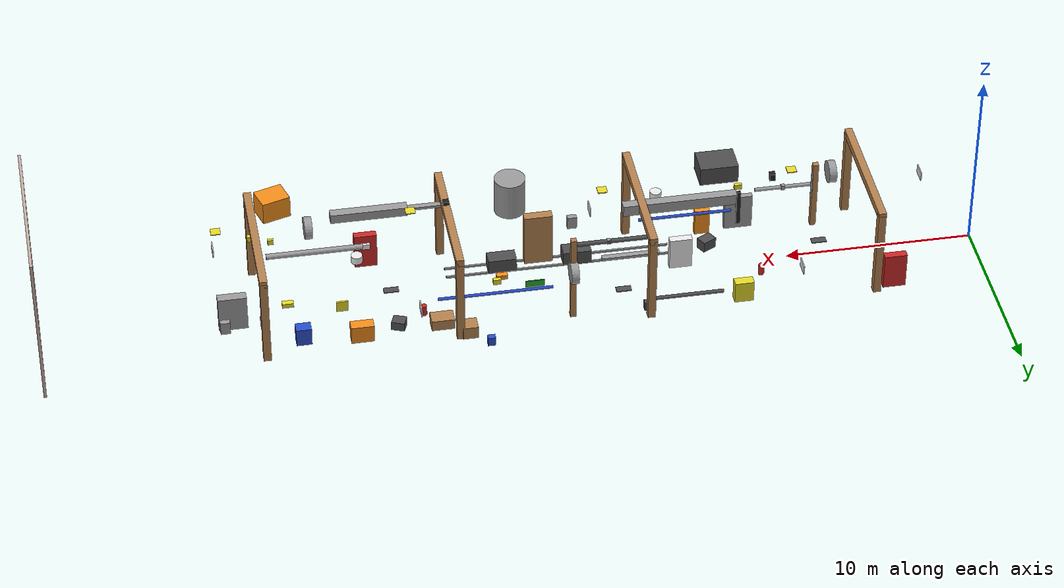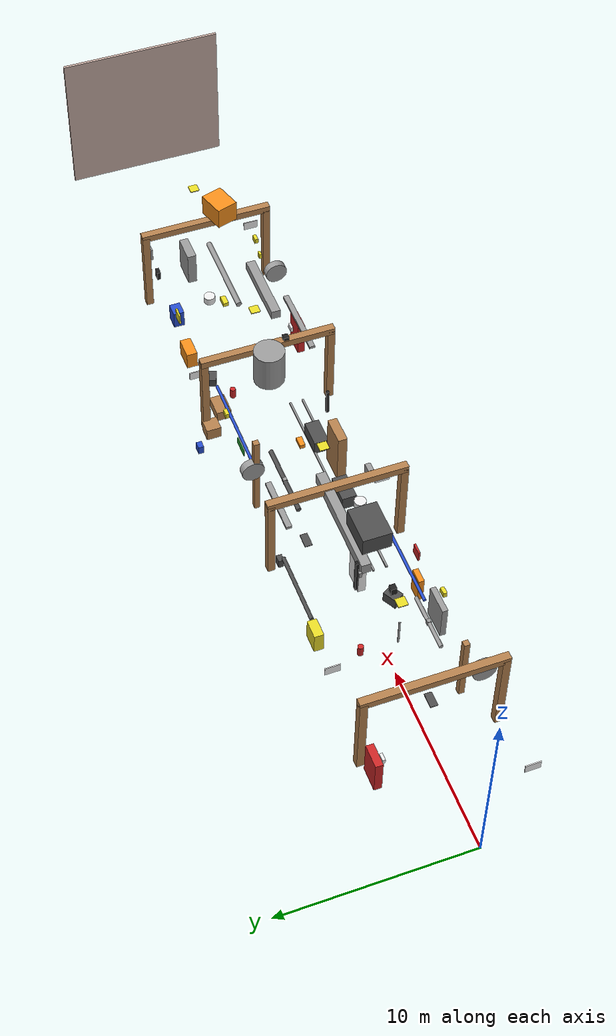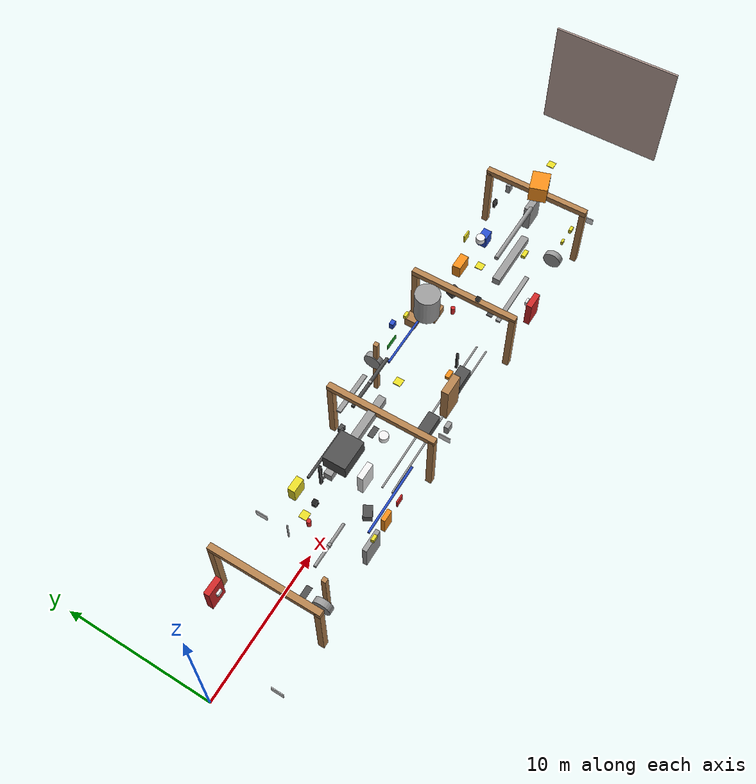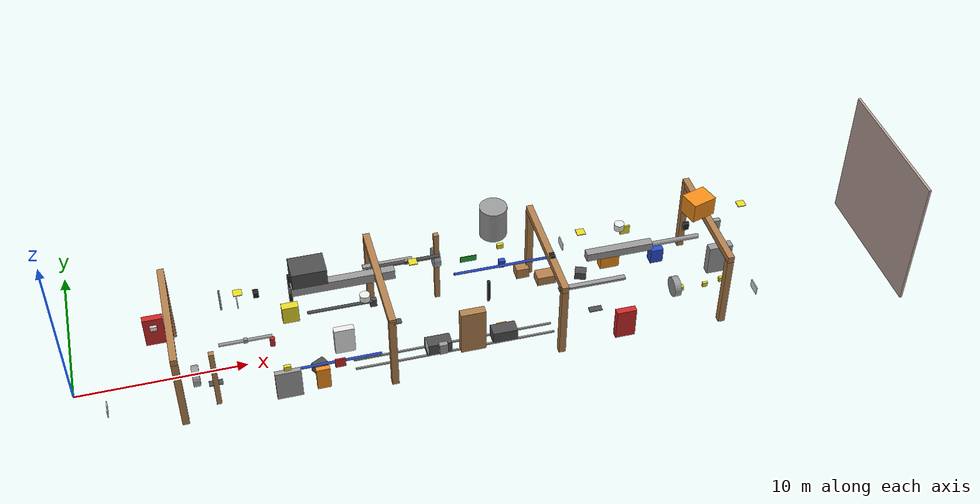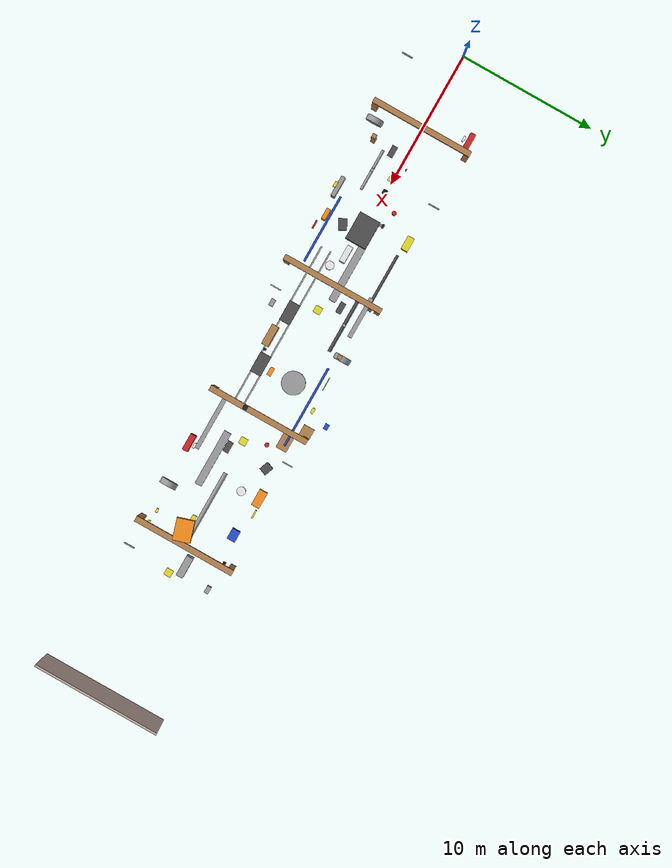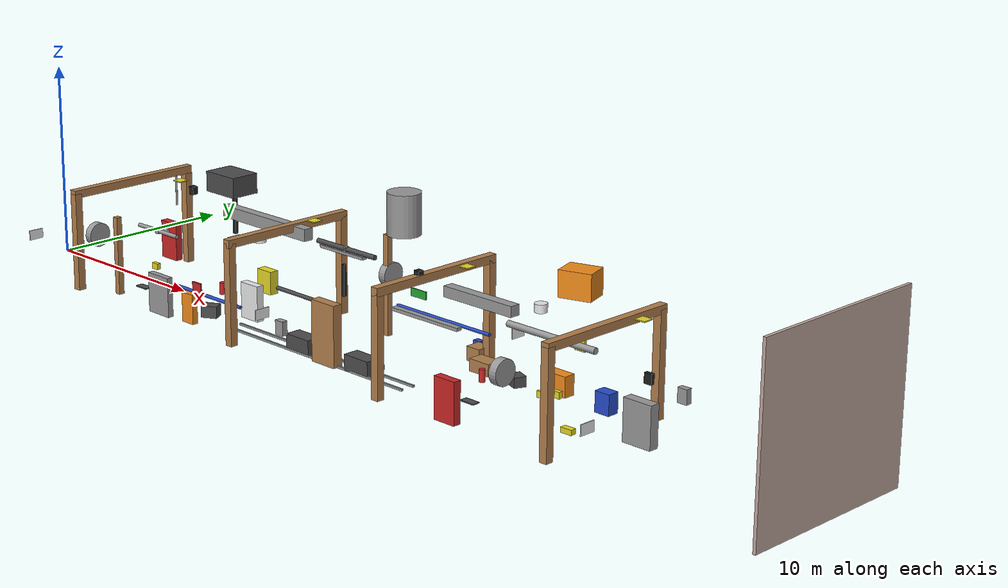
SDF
<sdf version="1.6">
 <world name="default">
  <light name="sun" type="directional">
   <pose>0 0 10 0 -0 0</pose>
   <diffuse>0.3 0.3 0.35 1</diffuse>
   <specular>0.1 0.1 0.1 1</specular>
   <attenuation>
    <range>1000</range>
    <constant>0.9</constant>
    <linear>0.01</linear>
    <quadratic>0.001</quadratic>
   </attenuation>
   <direction>-0.5 0.1 -0.9</direction>
   <spot><inner_angle>0</inner_angle><outer_angle>0</outer_angle><falloff>0</falloff></spot>
  </light>
  <gravity>0 0 -9.8</gravity>
  <magnetic_field>6e-06 2.3e-05 -4.2e-05</magnetic_field>
  <atmosphere type="adiabatic"/>
  <physics type="ode">
   <max_step_size>0.001</max_step_size>
   <real_time_factor>1</real_time_factor>
   <real_time_update_rate>1000</real_time_update_rate>
  </physics>
  <scene><ambient>0.15 0.15 0.18 1</ambient><background>0.1 0.1 0.12 1</background><shadows>1</shadows></scene>
  <spherical_coordinates>
   <surface_model>EARTH_WGS84</surface_model>
   <latitude_deg>0</latitude_deg>
   <longitude_deg>0</longitude_deg>
   <elevation>0</elevation>
   <heading_deg>0</heading_deg>
  </spherical_coordinates>
  <model name="tunnel_wall">
   <pose>41.9281 0 0 0 -0 0</pose>
   <link name="Wall_0">
    <collision name="Wall_0_Collision">
     <geometry><box><size>9.15 0.15 8.5</size></box></geometry>
     <pose>0 0 4.25 0 -0 0</pose>
    </collision>
    <visual name="Wall_0_Visual">
     <pose>0 0 4.25 0 -0 0</pose>
     <geometry><box><size>9.15 0.15 8.5</size></box></geometry>
     <material>
      <script><uri>file://media/materials/scripts/gazebo.material</uri><name>Gazebo/Grey</name></script>
      <ambient>0.760784 0.662745 0.627451 1</ambient>
     </material>
     <meta><layer>0</layer></meta>
    </visual>
    <pose>7.4625 0 0 0 -0 1.5708</pose>
   </link>
   <static>1</static>
  </model>
  <model name="fire_extinguisher_1">
   <pose>11.6268 1.17689 0 0 -0 0</pose>
   <link name="link">
    <collision name="collision">
     <geometry><cylinder><radius>0.15</radius><length>0.6</length></cylinder></geometry>
     <pose>0 0 0.3 0 0 0</pose>
    </collision>
    <visual name="visual">
     <pose>0 0 0.3 0 0 0</pose>
     <geometry><cylinder><radius>0.15</radius><length>0.6</length></cylinder></geometry>
     <material>
      <script><uri>file://media/materials/scripts/gazebo.material</uri><name>Gazebo/Red</name></script>
     </material>
    </visual>
   </link>
   <static>1</static>
  </model>
  <model name="backpack_1">
   <pose>18.0507 2.96156 0 0 -0 0</pose>
   <link name="link">
    <collision name="collision">
     <geometry><box><size>0.4 0.3 0.5</size></box></geometry>
     <pose>0 0 0.25 0 0 0</pose>
    </collision>
    <visual name="visual">
     <pose>0 0 0.25 0 0 0</pose>
     <geometry><box><size>0.4 0.3 0.5</size></box></geometry>
     <material>
      <script><uri>file://media/materials/scripts/gazebo.material</uri><name>Gazebo/DarkGrey</name></script>
     </material>
    </visual>
   </link>
   <static>1</static>
  </model>
  <model name="toolbox_1">
   <pose>25.1167 -0.811395 0 0 -0 0</pose>
   <link name="link">
    <collision name="collision">
     <geometry><box><size>0.6 0.3 0.25</size></box></geometry>
     <pose>0 0 0.125 0 0 0</pose>
    </collision>
    <visual name="visual">
     <pose>0 0 0.125 0 0 0</pose>
     <geometry><box><size>0.6 0.3 0.25</size></box></geometry>
     <material>
      <script><uri>file://media/materials/scripts/gazebo.material</uri><name>Gazebo/Orange</name></script>
     </material>
    </visual>
   </link>
   <static>1</static>
  </model>
  <model name="fire_extinguisher_2">
   <pose>29.5831 1.4324 0 0 -0 0</pose>
   <link name="link">
    <collision name="collision">
     <geometry><cylinder><radius>0.15</radius><length>0.6</length></cylinder></geometry>
     <pose>0 0 0.3 0 0 0</pose>
    </collision>
    <visual name="visual">
     <pose>0 0 0.3 0 0 0</pose>
     <geometry><cylinder><radius>0.15</radius><length>0.6</length></cylinder></geometry>
     <material>
      <script><uri>file://media/materials/scripts/gazebo.material</uri><name>Gazebo/Red</name></script>
     </material>
    </visual>
   </link>
   <static>1</static>
  </model>
  <model name="mining_cart_1">
   <pose>28.7837 2.42278 0 0 -0 0</pose>
   <link name="link">
    <collision name="collision">
     <geometry><box><size>1.2 0.8 0.6</size></box></geometry>
     <pose>0 0 0.3 0 0 0</pose>
    </collision>
    <visual name="visual">
     <pose>0 0 0.3 0 0 0</pose>
     <geometry><box><size>1.2 0.8 0.6</size></box></geometry>
     <material>
      <script><uri>file://media/materials/scripts/gazebo.material</uri><name>Gazebo/Wood</name></script>
     </material>
    </visual>
   </link>
   <static>1</static>
  </model>
  <model name="supply_crate_1">
   <pose>27.4993 3.35385 0 0 -0 0</pose>
   <link name="link">
    <collision name="collision">
     <geometry><box><size>0.8 0.8 0.7</size></box></geometry>
     <pose>0 0 0.35 0 0 0</pose>
    </collision>
    <visual name="visual">
     <pose>0 0 0.35 0 0 0</pose>
     <geometry><box><size>0.8 0.8 0.7</size></box></geometry>
     <material>
      <script><uri>file://media/materials/scripts/gazebo.material</uri><name>Gazebo/Wood</name></script>
     </material>
    </visual>
   </link>
   <static>1</static>
  </model>
  <model name="backpack_2">
   <pose>26.5208 4.34318 0 0 -0 0</pose>
   <link name="link">
    <collision name="collision">
     <geometry><box><size>0.4 0.3 0.5</size></box></geometry>
     <pose>0 0 0.25 0 0 0</pose>
    </collision>
    <visual name="visual">
     <pose>0 0 0.25 0 0 0</pose>
     <geometry><box><size>0.4 0.3 0.5</size></box></geometry>
     <material>
      <script><uri>file://media/materials/scripts/gazebo.material</uri><name>Gazebo/Blue</name></script>
     </material>
    </visual>
   </link>
   <static>1</static>
  </model>
  <model name="toolbox_2">
   <pose>36.4694 -0.458762 0 0 -0 0</pose>
   <link name="link">
    <collision name="collision">
     <geometry><box><size>0.6 0.3 0.25</size></box></geometry>
     <pose>0 0 0.125 0 0 0</pose>
    </collision>
    <visual name="visual">
     <pose>0 0 0.125 0 0 0</pose>
     <geometry><box><size>0.6 0.3 0.25</size></box></geometry>
     <material>
      <script><uri>file://media/materials/scripts/gazebo.material</uri><name>Gazebo/Yellow</name></script>
     </material>
    </visual>
   </link>
   <static>1</static>
  </model>
  <model name="equipment_rack_1">
   <pose>39.4364 0.680421 0 0 -0 0</pose>
   <link name="link">
    <collision name="collision">
     <geometry><box><size>1.5 0.5 2.0</size></box></geometry>
     <pose>0 0 1.0 0 0 0</pose>
    </collision>
    <visual name="visual">
     <pose>0 0 1.0 0 0 0</pose>
     <geometry><box><size>1.5 0.5 2.0</size></box></geometry>
     <material>
      <script><uri>file://media/materials/scripts/gazebo.material</uri><name>Gazebo/Grey</name></script>
     </material>
    </visual>
   </link>
   <static>1</static>
  </model>
  <model name="safety_station_1">
   <pose>15.6899 -0.274963 0 0 -0 0</pose>
   <link name="link">
    <collision name="collision">
     <geometry><box><size>1.2 0.4 1.8</size></box></geometry>
     <pose>0 0 0.9 0 0 0</pose>
    </collision>
    <visual name="visual">
     <pose>0 0 0.9 0 0 0</pose>
     <geometry><box><size>1.2 0.4 1.8</size></box></geometry>
     <material>
      <script><uri>file://media/materials/scripts/gazebo.material</uri><name>Gazebo/White</name></script>
     </material>
    </visual>
   </link>
   <static>1</static>
  </model>
  <model name="hanging_pipe_1">
   <pose>10 -1.5 3.5 0 1.57 0</pose>
   <link name="link">
    <collision name="collision">
     <geometry><cylinder><radius>0.1</radius><length>3.0</length></cylinder></geometry>
    </collision>
    <visual name="visual">
     <geometry><cylinder><radius>0.1</radius><length>3.0</length></cylinder></geometry>
     <material>
      <script><uri>file://media/materials/scripts/gazebo.material</uri><name>Gazebo/Grey</name></script>
     </material>
    </visual>
   </link>
   <static>1</static>
  </model>
  <model name="hanging_pipe_2">
   <pose>20 2.0 4.0 0 1.57 0</pose>
   <link name="link">
    <collision name="collision">
     <geometry><cylinder><radius>0.12</radius><length>4.0</length></cylinder></geometry>
    </collision>
    <visual name="visual">
     <geometry><cylinder><radius>0.12</radius><length>4.0</length></cylinder></geometry>
     <material>
      <script><uri>file://media/materials/scripts/gazebo.material</uri><name>Gazebo/DarkGrey</name></script>
     </material>
    </visual>
   </link>
   <static>1</static>
  </model>
  <model name="hanging_pipe_3">
   <pose>35 0 3.8 0 1.57 0</pose>
   <link name="link">
    <collision name="collision">
     <geometry><cylinder><radius>0.15</radius><length>5.0</length></cylinder></geometry>
    </collision>
    <visual name="visual">
     <geometry><cylinder><radius>0.15</radius><length>5.0</length></cylinder></geometry>
     <material>
      <script><uri>file://media/materials/scripts/gazebo.material</uri><name>Gazebo/Grey</name></script>
     </material>
    </visual>
   </link>
   <static>1</static>
  </model>
  <model name="cable_bundle_1">
   <pose>13 1.0 4.5 0 0 0</pose>
   <link name="link">
    <collision name="collision"><geometry><box><size>0.2 0.15 2.0</size></box></geometry></collision>
    <visual name="visual">
     <geometry><box><size>0.2 0.15 2.0</size></box></geometry>
     <material>
      <script><uri>file://media/materials/scripts/gazebo.material</uri><name>Gazebo/Black</name></script>
     </material>
    </visual>
   </link>
   <static>1</static>
  </model>
  <model name="cable_bundle_2">
   <pose>24 -1.8 4.2 0 0 0</pose>
   <link name="link">
    <collision name="collision"><geometry><box><size>0.15 0.15 1.5</size></box></geometry></collision>
    <visual name="visual">
     <geometry><box><size>0.15 0.15 1.5</size></box></geometry>
     <material>
      <script><uri>file://media/materials/scripts/gazebo.material</uri><name>Gazebo/Black</name></script>
     </material>
    </visual>
   </link>
   <static>1</static>
  </model>
  <model name="support_beam_1">
   <pose>8 -2.5 2.0 0 0 0</pose>
   <link name="link">
    <collision name="collision"><geometry><box><size>0.3 0.3 4.0</size></box></geometry></collision>
    <visual name="visual">
     <geometry><box><size>0.3 0.3 4.0</size></box></geometry>
     <material>
      <script><uri>file://media/materials/scripts/gazebo.material</uri><name>Gazebo/Wood</name></script>
     </material>
    </visual>
   </link>
   <static>1</static>
  </model>
  <model name="support_beam_2">
   <pose>22 2.8 2.5 0 0 0</pose>
   <link name="link">
    <collision name="collision"><geometry><box><size>0.3 0.3 5.0</size></box></geometry></collision>
    <visual name="visual">
     <geometry><box><size>0.3 0.3 5.0</size></box></geometry>
     <material>
      <script><uri>file://media/materials/scripts/gazebo.material</uri><name>Gazebo/Wood</name></script>
     </material>
    </visual>
   </link>
   <static>1</static>
  </model>
  <model name="ventilation_duct_1">
   <pose>16 0.5 4.8 0 1.57 0</pose>
   <link name="link">
    <collision name="collision"><geometry><box><size>0.6 0.5 6.0</size></box></geometry></collision>
    <visual name="visual">
     <geometry><box><size>0.6 0.5 6.0</size></box></geometry>
     <material>
      <script><uri>file://media/materials/scripts/gazebo.material</uri><name>Gazebo/Grey</name></script>
     </material>
    </visual>
   </link>
   <static>1</static>
  </model>
  <model name="ventilation_duct_2">
   <pose>32 -1.2 5.0 0 1.57 0</pose>
   <link name="link">
    <collision name="collision"><geometry><box><size>0.5 0.5 4.0</size></box></geometry></collision>
    <visual name="visual">
     <geometry><box><size>0.5 0.5 4.0</size></box></geometry>
     <material>
      <script><uri>file://media/materials/scripts/gazebo.material</uri><name>Gazebo/Grey</name></script>
     </material>
    </visual>
   </link>
   <static>1</static>
  </model>
  <model name="light_box_1">
   <pose>12 -3.2 2.5 0 0 0</pose>
   <link name="link">
    <collision name="collision"><geometry><box><size>0.4 0.2 0.3</size></box></geometry></collision>
    <visual name="visual">
     <geometry><box><size>0.4 0.2 0.3</size></box></geometry>
     <material>
      <script><uri>file://media/materials/scripts/gazebo.material</uri><name>Gazebo/Yellow</name></script>
     </material>
    </visual>
   </link>
   <static>1</static>
  </model>
  <model name="light_box_2">
   <pose>26 3.0 3.0 0 0 0</pose>
   <link name="link">
    <collision name="collision"><geometry><box><size>0.4 0.2 0.3</size></box></geometry></collision>
    <visual name="visual">
     <geometry><box><size>0.4 0.2 0.3</size></box></geometry>
     <material>
      <script><uri>file://media/materials/scripts/gazebo.material</uri><name>Gazebo/Yellow</name></script>
     </material>
    </visual>
   </link>
   <static>1</static>
  </model>
  <model name="light_box_3">
   <pose>38 -2.9 2.8 0 0 0</pose>
   <link name="link">
    <collision name="collision"><geometry><box><size>0.4 0.2 0.3</size></box></geometry></collision>
    <visual name="visual">
     <geometry><box><size>0.4 0.2 0.3</size></box></geometry>
     <material>
      <script><uri>file://media/materials/scripts/gazebo.material</uri><name>Gazebo/Yellow</name></script>
     </material>
    </visual>
   </link>
   <static>1</static>
  </model>
  <model name="cable_tray_1">
   <pose>19 2.7 3.5 0 0 0</pose>
   <link name="link">
    <collision name="collision"><geometry><box><size>3.0 0.3 0.15</size></box></geometry></collision>
    <visual name="visual">
     <geometry><box><size>3.0 0.3 0.15</size></box></geometry>
     <material>
      <script><uri>file://media/materials/scripts/gazebo.material</uri><name>Gazebo/Grey</name></script>
     </material>
    </visual>
   </link>
   <static>1</static>
  </model>
  <model name="cable_tray_2">
   <pose>30 -2.5 4.0 0 0 0</pose>
   <link name="link">
    <collision name="collision"><geometry><box><size>4.0 0.3 0.15</size></box></geometry></collision>
    <visual name="visual">
     <geometry><box><size>4.0 0.3 0.15</size></box></geometry>
     <material>
      <script><uri>file://media/materials/scripts/gazebo.material</uri><name>Gazebo/Grey</name></script>
     </material>
    </visual>
   </link>
   <static>1</static>
  </model>
  <model name="roof_structure_1">
   <pose>14 0 6.5 0 0 0</pose>
   <link name="link">
    <collision name="collision"><geometry><box><size>2.0 1.5 1.0</size></box></geometry></collision>
    <visual name="visual">
     <geometry><box><size>2.0 1.5 1.0</size></box></geometry>
     <material>
      <script><uri>file://media/materials/scripts/gazebo.material</uri><name>Gazebo/DarkGrey</name></script>
     </material>
    </visual>
   </link>
   <static>1</static>
  </model>
  <model name="roof_ventilation_shaft">
   <pose>25 1.0 7.0 0 0 0</pose>
   <link name="link">
    <collision name="collision">
     <geometry><cylinder><radius>0.8</radius><length>2.0</length></cylinder></geometry>
    </collision>
    <visual name="visual">
     <geometry><cylinder><radius>0.8</radius><length>2.0</length></cylinder></geometry>
     <material>
      <script><uri>file://media/materials/scripts/gazebo.material</uri><name>Gazebo/Grey</name></script>
     </material>
    </visual>
   </link>
   <static>1</static>
  </model>
  <model name="roof_equipment_box">
   <pose>37 -0.5 6.8 0 0 0.3</pose>
   <link name="link">
    <collision name="collision"><geometry><box><size>1.5 1.2 1.2</size></box></geometry></collision>
    <visual name="visual">
     <geometry><box><size>1.5 1.2 1.2</size></box></geometry>
     <material>
      <script><uri>file://media/materials/scripts/gazebo.material</uri><name>Gazebo/Orange</name></script>
     </material>
    </visual>
   </link>
   <static>1</static>
  </model>
  <model name="hanging_chain_1">
   <pose>9 0.5 5.0 0 0 0</pose>
   <link name="link">
    <collision name="collision">
     <geometry><cylinder><radius>0.05</radius><length>1.5</length></cylinder></geometry>
    </collision>
    <visual name="visual">
     <geometry><cylinder><radius>0.05</radius><length>1.5</length></cylinder></geometry>
     <material>
      <script><uri>file://media/materials/scripts/gazebo.material</uri><name>Gazebo/Grey</name></script>
     </material>
    </visual>
   </link>
   <static>1</static>
  </model>
  <model name="hanging_light_1">
   <pose>17 -0.8 4.5 0 0 0</pose>
   <link name="link">
    <collision name="collision">
     <geometry><cylinder><radius>0.3</radius><length>0.4</length></cylinder></geometry>
    </collision>
    <visual name="visual">
     <geometry><cylinder><radius>0.3</radius><length>0.4</length></cylinder></geometry>
     <material>
      <script><uri>file://media/materials/scripts/gazebo.material</uri><name>Gazebo/White</name></script>
     </material>
    </visual>
   </link>
   <static>1</static>
  </model>
  <model name="hanging_light_2">
   <pose>33 1.5 4.3 0 0 0</pose>
   <link name="link">
    <collision name="collision">
     <geometry><cylinder><radius>0.3</radius><length>0.4</length></cylinder></geometry>
    </collision>
    <visual name="visual">
     <geometry><cylinder><radius>0.3</radius><length>0.4</length></cylinder></geometry>
     <material>
      <script><uri>file://media/materials/scripts/gazebo.material</uri><name>Gazebo/White</name></script>
     </material>
    </visual>
   </link>
   <static>1</static>
  </model>
  <model name="warning_sign_1">
   <pose>15 -3.1 2.0 0 0 0</pose>
   <link name="link">
    <collision name="collision"><geometry><box><size>0.6 0.1 0.6</size></box></geometry></collision>
    <visual name="visual">
     <geometry><box><size>0.6 0.1 0.6</size></box></geometry>
     <material>
      <script><uri>file://media/materials/scripts/gazebo.material</uri><name>Gazebo/Red</name></script>
     </material>
    </visual>
   </link>
   <static>1</static>
  </model>
  <model name="warning_sign_2">
   <pose>34 3.0 2.5 0 0 0</pose>
   <link name="link">
    <collision name="collision"><geometry><box><size>0.6 0.1 0.6</size></box></geometry></collision>
    <visual name="visual">
     <geometry><box><size>0.6 0.1 0.6</size></box></geometry>
     <material>
      <script><uri>file://media/materials/scripts/gazebo.material</uri><name>Gazebo/Yellow</name></script>
     </material>
    </visual>
   </link>
   <static>1</static>
  </model>
  <model name="electrical_box_1">
   <pose>21 -3.0 1.5 0 0 0</pose>
   <link name="link">
    <collision name="collision"><geometry><box><size>0.5 0.3 0.7</size></box></geometry></collision>
    <visual name="visual">
     <geometry><box><size>0.5 0.3 0.7</size></box></geometry>
     <material>
      <script><uri>file://media/materials/scripts/gazebo.material</uri><name>Gazebo/Grey</name></script>
     </material>
    </visual>
   </link>
   <static>1</static>
  </model>
  <model name="electrical_box_2">
   <pose>40 2.8 1.8 0 0 0</pose>
   <link name="link">
    <collision name="collision"><geometry><box><size>0.5 0.3 0.7</size></box></geometry></collision>
    <visual name="visual">
     <geometry><box><size>0.5 0.3 0.7</size></box></geometry>
     <material>
      <script><uri>file://media/materials/scripts/gazebo.material</uri><name>Gazebo/Grey</name></script>
     </material>
    </visual>
   </link>
   <static>1</static>
  </model>
  <model name="rock_debris_1">
   <pose>14 -1.5 0.3 0 0 0.5</pose>
   <link name="link">
    <collision name="collision"><geometry><box><size>0.8 0.6 0.6</size></box></geometry></collision>
    <visual name="visual">
     <geometry><box><size>0.8 0.6 0.6</size></box></geometry>
     <material>
      <script><uri>file://media/materials/scripts/gazebo.material</uri><name>Gazebo/DarkGrey</name></script>
     </material>
    </visual>
   </link>
   <static>1</static>
  </model>
  <model name="rock_debris_2">
   <pose>31 2.2 0.25 0 0 1.2</pose>
   <link name="link">
    <collision name="collision"><geometry><box><size>0.6 0.7 0.5</size></box></geometry></collision>
    <visual name="visual">
     <geometry><box><size>0.6 0.7 0.5</size></box></geometry>
     <material>
      <script><uri>file://media/materials/scripts/gazebo.material</uri><name>Gazebo/DarkGrey</name></script>
     </material>
    </visual>
   </link>
   <static>1</static>
  </model>
  <model name="narrow_passage_1">
   <pose>23 -2.0 1.5 0 0 0</pose>
   <link name="link">
    <collision name="collision"><geometry><box><size>1.5 0.5 3.0</size></box></geometry></collision>
    <visual name="visual">
     <geometry><box><size>1.5 0.5 3.0</size></box></geometry>
     <material>
      <script><uri>file://media/materials/scripts/gazebo.material</uri><name>Gazebo/Wood</name></script>
     </material>
    </visual>
   </link>
   <static>1</static>
  </model>
  <model name="sensor_mount_1">
   <pose>11 0 5.5 0 0 0</pose>
   <link name="link">
    <collision name="collision"><geometry><box><size>0.3 0.3 0.4</size></box></geometry></collision>
    <visual name="visual">
     <geometry><box><size>0.3 0.3 0.4</size></box></geometry>
     <material>
      <script><uri>file://media/materials/scripts/gazebo.material</uri><name>Gazebo/Black</name></script>
     </material>
    </visual>
   </link>
   <static>1</static>
  </model>
  <model name="sensor_mount_2">
   <pose>28 -1.0 5.2 0 0 0</pose>
   <link name="link">
    <collision name="collision"><geometry><box><size>0.3 0.3 0.4</size></box></geometry></collision>
    <visual name="visual">
     <geometry><box><size>0.3 0.3 0.4</size></box></geometry>
     <material>
      <script><uri>file://media/materials/scripts/gazebo.material</uri><name>Gazebo/Black</name></script>
     </material>
    </visual>
   </link>
   <static>1</static>
  </model>
  <model name="distance_marker_0">
   <pose>2 -3.3 2.0 0 0 1.57</pose>
   <link name="link">
    <collision name="collision"><geometry><box><size>0.8 0.05 0.5</size></box></geometry></collision>
    <visual name="visual">
     <geometry><box><size>0.8 0.05 0.5</size></box></geometry>
     <material>
      <script><uri>file://media/materials/scripts/gazebo.material</uri><name>Gazebo/White</name></script>
     </material>
    </visual>
   </link>
   <static>1</static>
  </model>
  <model name="emergency_station_1">
   <pose>5 3.2 0 0 0 0</pose>
   <link name="link">
    <collision name="collision">
     <geometry><box><size>1.2 0.4 2.0</size></box></geometry>
     <pose>0 0 1.0 0 0 0</pose>
    </collision>
    <visual name="visual">
     <pose>0 0 1.0 0 0 0</pose>
     <geometry><box><size>1.2 0.4 2.0</size></box></geometry>
     <material>
      <script><uri>file://media/materials/scripts/gazebo.material</uri><name>Gazebo/Red</name></script>
     </material>
    </visual>
   </link>
   <static>1</static>
  </model>
  <model name="first_aid_kit_1">
   <pose>5 2.8 1.5 0 0 0</pose>
   <link name="link">
    <collision name="collision"><geometry><box><size>0.4 0.15 0.3</size></box></geometry></collision>
    <visual name="visual">
     <geometry><box><size>0.4 0.15 0.3</size></box></geometry>
     <material>
      <script><uri>file://media/materials/scripts/gazebo.material</uri><name>Gazebo/White</name></script>
     </material>
    </visual>
   </link>
   <static>1</static>
  </model>
  <model name="ventilation_fan_1">
   <pose>7 -3.0 3.0 0 1.57 0</pose>
   <link name="link">
    <collision name="collision">
     <geometry><cylinder><radius>0.6</radius><length>0.4</length></cylinder></geometry>
    </collision>
    <visual name="visual">
     <geometry><cylinder><radius>0.6</radius><length>0.4</length></cylinder></geometry>
     <material>
      <script><uri>file://media/materials/scripts/gazebo.material</uri><name>Gazebo/Grey</name></script>
     </material>
    </visual>
   </link>
   <static>1</static>
  </model>
  <model name="distance_marker_10">
   <pose>10 3.3 2.0 0 0 -1.57</pose>
   <link name="link">
    <collision name="collision"><geometry><box><size>0.8 0.05 0.5</size></box></geometry></collision>
    <visual name="visual">
     <geometry><box><size>0.8 0.05 0.5</size></box></geometry>
     <material>
      <script><uri>file://media/materials/scripts/gazebo.material</uri><name>Gazebo/White</name></script>
     </material>
    </visual>
   </link>
   <static>1</static>
  </model>
  <model name="tool_rack_1">
   <pose>12 -3.0 0 0 0 0</pose>
   <link name="link">
    <collision name="collision">
     <geometry><box><size>1.5 0.3 2.0</size></box></geometry>
     <pose>0 0 1.0 0 0 0</pose>
    </collision>
    <visual name="visual">
     <pose>0 0 1.0 0 0 0</pose>
     <geometry><box><size>1.5 0.3 2.0</size></box></geometry>
     <material>
      <script><uri>file://media/materials/scripts/gazebo.material</uri><name>Gazebo/Grey</name></script>
     </material>
    </visual>
   </link>
   <static>1</static>
  </model>
  <model name="battery_charging_station">
   <pose>13 3.0 0 0 0 0</pose>
   <link name="link">
    <collision name="collision">
     <geometry><box><size>1.0 0.5 1.2</size></box></geometry>
     <pose>0 0 0.6 0 0 0</pose>
    </collision>
    <visual name="visual">
     <pose>0 0 0.6 0 0 0</pose>
     <geometry><box><size>1.0 0.5 1.2</size></box></geometry>
     <material>
      <script><uri>file://media/materials/scripts/gazebo.material</uri><name>Gazebo/Yellow</name></script>
     </material>
    </visual>
   </link>
   <static>1</static>
  </model>
  <model name="ppe_rack">
   <pose>14 -2.8 0 0 0 0</pose>
   <link name="link">
    <collision name="collision">
     <geometry><box><size>0.8 0.3 1.5</size></box></geometry>
     <pose>0 0 0.75 0 0 0</pose>
    </collision>
    <visual name="visual">
     <pose>0 0 0.75 0 0 0</pose>
     <geometry><box><size>0.8 0.3 1.5</size></box></geometry>
     <material>
      <script><uri>file://media/materials/scripts/gazebo.material</uri><name>Gazebo/Orange</name></script>
     </material>
    </visual>
   </link>
   <static>1</static>
  </model>
  <model name="compressed_air_line_1">
   <pose>15 -2.5 1.5 0 1.57 0</pose>
   <link name="link">
    <collision name="collision">
     <geometry><cylinder><radius>0.08</radius><length>5.0</length></cylinder></geometry>
    </collision>
    <visual name="visual">
     <geometry><cylinder><radius>0.08</radius><length>5.0</length></cylinder></geometry>
     <material>
      <script><uri>file://media/materials/scripts/gazebo.material</uri><name>Gazebo/Blue</name></script>
     </material>
    </visual>
   </link>
   <static>1</static>
  </model>
  <model name="water_pipe_1">
   <pose>16 2.8 0.5 0 1.57 0</pose>
   <link name="link">
    <collision name="collision">
     <geometry><cylinder><radius>0.1</radius><length>4.0</length></cylinder></geometry>
    </collision>
    <visual name="visual">
     <geometry><cylinder><radius>0.1</radius><length>4.0</length></cylinder></geometry>
     <material>
      <script><uri>file://media/materials/scripts/gazebo.material</uri><name>Gazebo/DarkGrey</name></script>
     </material>
    </visual>
   </link>
   <static>1</static>
  </model>
  <model name="distance_marker_20">
   <pose>20 -3.3 2.0 0 0 1.57</pose>
   <link name="link">
    <collision name="collision"><geometry><box><size>0.8 0.05 0.5</size></box></geometry></collision>
    <visual name="visual">
     <geometry><box><size>0.8 0.05 0.5</size></box></geometry>
     <material>
      <script><uri>file://media/materials/scripts/gazebo.material</uri><name>Gazebo/White</name></script>
     </material>
    </visual>
   </link>
   <static>1</static>
  </model>
  <model name="rail_track_left">
   <pose>22 -2.0 0.05 0 0 0</pose>
   <link name="link">
    <collision name="collision"><geometry><box><size>12.0 0.1 0.1</size></box></geometry></collision>
    <visual name="visual">
     <geometry><box><size>12.0 0.1 0.1</size></box></geometry>
     <material>
      <script><uri>file://media/materials/scripts/gazebo.material</uri><name>Gazebo/Grey</name></script>
     </material>
    </visual>
   </link>
   <static>1</static>
  </model>
  <model name="rail_track_right">
   <pose>22 -1.3 0.05 0 0 0</pose>
   <link name="link">
    <collision name="collision"><geometry><box><size>12.0 0.1 0.1</size></box></geometry></collision>
    <visual name="visual">
     <geometry><box><size>12.0 0.1 0.1</size></box></geometry>
     <material>
      <script><uri>file://media/materials/scripts/gazebo.material</uri><name>Gazebo/Grey</name></script>
     </material>
    </visual>
   </link>
   <static>1</static>
  </model>
  <model name="ore_cart_on_rails_1">
   <pose>21 -1.65 0.4 0 0 0</pose>
   <link name="link">
    <collision name="collision"><geometry><box><size>1.5 0.8 0.8</size></box></geometry></collision>
    <visual name="visual">
     <geometry><box><size>1.5 0.8 0.8</size></box></geometry>
     <material>
      <script><uri>file://media/materials/scripts/gazebo.material</uri><name>Gazebo/DarkGrey</name></script>
     </material>
    </visual>
   </link>
   <static>1</static>
  </model>
  <model name="ore_cart_on_rails_2">
   <pose>25 -1.65 0.4 0 0 0</pose>
   <link name="link">
    <collision name="collision"><geometry><box><size>1.5 0.8 0.8</size></box></geometry></collision>
    <visual name="visual">
     <geometry><box><size>1.5 0.8 0.8</size></box></geometry>
     <material>
      <script><uri>file://media/materials/scripts/gazebo.material</uri><name>Gazebo/DarkGrey</name></script>
     </material>
    </visual>
   </link>
   <static>1</static>
  </model>
  <model name="ventilation_fan_2">
   <pose>22 3.0 3.0 0 1.57 0</pose>
   <link name="link">
    <collision name="collision">
     <geometry><cylinder><radius>0.6</radius><length>0.4</length></cylinder></geometry>
    </collision>
    <visual name="visual">
     <geometry><cylinder><radius>0.6</radius><length>0.4</length></cylinder></geometry>
     <material>
      <script><uri>file://media/materials/scripts/gazebo.material</uri><name>Gazebo/Grey</name></script>
     </material>
    </visual>
   </link>
   <static>1</static>
  </model>
  <model name="direction_arrow_1">
   <pose>24 2.9 2.5 0 0 0</pose>
   <link name="link">
    <collision name="collision"><geometry><box><size>1.0 0.05 0.4</size></box></geometry></collision>
    <visual name="visual">
     <geometry><box><size>1.0 0.05 0.4</size></box></geometry>
     <material>
      <script><uri>file://media/materials/scripts/gazebo.material</uri><name>Gazebo/Green</name></script>
     </material>
    </visual>
   </link>
   <static>1</static>
  </model>
  <model name="compressed_air_line_2">
   <pose>26 2.5 1.8 0 1.57 0</pose>
   <link name="link">
    <collision name="collision">
     <geometry><cylinder><radius>0.08</radius><length>6.0</length></cylinder></geometry>
    </collision>
    <visual name="visual">
     <geometry><cylinder><radius>0.08</radius><length>6.0</length></cylinder></geometry>
     <material>
      <script><uri>file://media/materials/scripts/gazebo.material</uri><name>Gazebo/Blue</name></script>
     </material>
    </visual>
   </link>
   <static>1</static>
  </model>
  <model name="distance_marker_30">
   <pose>30 3.3 2.0 0 0 -1.57</pose>
   <link name="link">
    <collision name="collision"><geometry><box><size>0.8 0.05 0.5</size></box></geometry></collision>
    <visual name="visual">
     <geometry><box><size>0.8 0.05 0.5</size></box></geometry>
     <material>
      <script><uri>file://media/materials/scripts/gazebo.material</uri><name>Gazebo/White</name></script>
     </material>
    </visual>
   </link>
   <static>1</static>
  </model>
  <model name="emergency_station_2">
   <pose>32 -3.2 0 0 0 0</pose>
   <link name="link">
    <collision name="collision">
     <geometry><box><size>1.2 0.4 2.0</size></box></geometry>
     <pose>0 0 1.0 0 0 0</pose>
    </collision>
    <visual name="visual">
     <pose>0 0 1.0 0 0 0</pose>
     <geometry><box><size>1.2 0.4 2.0</size></box></geometry>
     <material>
      <script><uri>file://media/materials/scripts/gazebo.material</uri><name>Gazebo/Red</name></script>
     </material>
    </visual>
   </link>
   <static>1</static>
  </model>
  <model name="first_aid_kit_2">
   <pose>32 -2.8 1.5 0 0 0</pose>
   <link name="link">
    <collision name="collision"><geometry><box><size>0.4 0.15 0.3</size></box></geometry></collision>
    <visual name="visual">
     <geometry><box><size>0.4 0.15 0.3</size></box></geometry>
     <material>
      <script><uri>file://media/materials/scripts/gazebo.material</uri><name>Gazebo/White</name></script>
     </material>
    </visual>
   </link>
   <static>1</static>
  </model>
  <model name="tool_station_2">
   <pose>33 2.8 0 0 0 0</pose>
   <link name="link">
    <collision name="collision">
     <geometry><box><size>1.2 0.6 1.0</size></box></geometry>
     <pose>0 0 0.5 0 0 0</pose>
    </collision>
    <visual name="visual">
     <pose>0 0 0.5 0 0 0</pose>
     <geometry><box><size>1.2 0.6 1.0</size></box></geometry>
     <material>
      <script><uri>file://media/materials/scripts/gazebo.material</uri><name>Gazebo/Orange</name></script>
     </material>
    </visual>
   </link>
   <static>1</static>
  </model>
  <model name="ventilation_fan_3">
   <pose>35 -3.0 3.0 0 1.57 0</pose>
   <link name="link">
    <collision name="collision">
     <geometry><cylinder><radius>0.6</radius><length>0.4</length></cylinder></geometry>
    </collision>
    <visual name="visual">
     <geometry><cylinder><radius>0.6</radius><length>0.4</length></cylinder></geometry>
     <material>
      <script><uri>file://media/materials/scripts/gazebo.material</uri><name>Gazebo/Grey</name></script>
     </material>
    </visual>
   </link>
   <static>1</static>
  </model>
  <model name="water_pump_station">
   <pose>36 2.5 0 0 0 0</pose>
   <link name="link">
    <collision name="collision">
     <geometry><box><size>0.8 0.6 1.0</size></box></geometry>
     <pose>0 0 0.5 0 0 0</pose>
    </collision>
    <visual name="visual">
     <pose>0 0 0.5 0 0 0</pose>
     <geometry><box><size>0.8 0.6 1.0</size></box></geometry>
     <material>
      <script><uri>file://media/materials/scripts/gazebo.material</uri><name>Gazebo/Blue</name></script>
     </material>
    </visual>
   </link>
   <static>1</static>
  </model>
  <model name="methane_detector_1">
   <pose>37 -2.8 2.5 0 0 0</pose>
   <link name="link">
    <collision name="collision"><geometry><box><size>0.3 0.15 0.3</size></box></geometry></collision>
    <visual name="visual">
     <geometry><box><size>0.3 0.15 0.3</size></box></geometry>
     <material>
      <script><uri>file://media/materials/scripts/gazebo.material</uri><name>Gazebo/Yellow</name></script>
     </material>
    </visual>
   </link>
   <static>1</static>
  </model>
  <model name="communication_box">
   <pose>38 2.9 2.0 0 0 0</pose>
   <link name="link">
    <collision name="collision"><geometry><box><size>0.4 0.2 0.5</size></box></geometry></collision>
    <visual name="visual">
     <geometry><box><size>0.4 0.2 0.5</size></box></geometry>
     <material>
      <script><uri>file://media/materials/scripts/gazebo.material</uri><name>Gazebo/Black</name></script>
     </material>
    </visual>
   </link>
   <static>1</static>
  </model>
  <model name="distance_marker_40">
   <pose>40 -3.3 2.0 0 0 1.57</pose>
   <link name="link">
    <collision name="collision"><geometry><box><size>0.8 0.05 0.5</size></box></geometry></collision>
    <visual name="visual">
     <geometry><box><size>0.8 0.05 0.5</size></box></geometry>
     <material>
      <script><uri>file://media/materials/scripts/gazebo.material</uri><name>Gazebo/White</name></script>
     </material>
    </visual>
   </link>
   <static>1</static>
  </model>
  <model name="reflective_marker_1">
   <pose>10 0 5.8 0 0 0</pose>
   <link name="link">
    <collision name="collision"><geometry><box><size>0.5 0.5 0.05</size></box></geometry></collision>
    <visual name="visual">
     <geometry><box><size>0.5 0.5 0.05</size></box></geometry>
     <material>
      <script><uri>file://media/materials/scripts/gazebo.material</uri><name>Gazebo/Yellow</name></script>
     </material>
    </visual>
   </link>
   <static>1</static>
  </model>
  <model name="reflective_marker_2">
   <pose>20 0 5.8 0 0 0</pose>
   <link name="link">
    <collision name="collision"><geometry><box><size>0.5 0.5 0.05</size></box></geometry></collision>
    <visual name="visual">
     <geometry><box><size>0.5 0.5 0.05</size></box></geometry>
     <material>
      <script><uri>file://media/materials/scripts/gazebo.material</uri><name>Gazebo/Yellow</name></script>
     </material>
    </visual>
   </link>
   <static>1</static>
  </model>
  <model name="reflective_marker_3">
   <pose>30 0 5.8 0 0 0</pose>
   <link name="link">
    <collision name="collision"><geometry><box><size>0.5 0.5 0.05</size></box></geometry></collision>
    <visual name="visual">
     <geometry><box><size>0.5 0.5 0.05</size></box></geometry>
     <material>
      <script><uri>file://media/materials/scripts/gazebo.material</uri><name>Gazebo/Yellow</name></script>
     </material>
    </visual>
   </link>
   <static>1</static>
  </model>
  <model name="reflective_marker_4">
   <pose>40 0 5.8 0 0 0</pose>
   <link name="link">
    <collision name="collision"><geometry><box><size>0.5 0.5 0.05</size></box></geometry></collision>
    <visual name="visual">
     <geometry><box><size>0.5 0.5 0.05</size></box></geometry>
     <material>
      <script><uri>file://media/materials/scripts/gazebo.material</uri><name>Gazebo/Yellow</name></script>
     </material>
    </visual>
   </link>
   <static>1</static>
  </model>
  <light name="work_light_1" type="spot">
   <pose>5 0 5.5 0 0.8 0</pose>
   <diffuse>1.0 0.95 0.8 1</diffuse>
   <specular>0.8 0.8 0.7 1</specular>
   <attenuation>
    <range>15</range>
    <constant>0.2</constant>
    <linear>0.05</linear>
    <quadratic>0.01</quadratic>
   </attenuation>
   <direction>0 0 -1</direction>
   <spot><inner_angle>0.6</inner_angle><outer_angle>1.1</outer_angle><falloff>1</falloff></spot>
  </light>
  <light name="work_light_2" type="spot">
   <pose>15 0 5.5 0 0.8 0</pose>
   <diffuse>1.0 0.95 0.8 1</diffuse>
   <specular>0.8 0.8 0.7 1</specular>
   <attenuation>
    <range>15</range>
    <constant>0.2</constant>
    <linear>0.05</linear>
    <quadratic>0.01</quadratic>
   </attenuation>
   <direction>0 0 -1</direction>
   <spot><inner_angle>0.6</inner_angle><outer_angle>1.1</outer_angle><falloff>1</falloff></spot>
  </light>
  <light name="work_light_3" type="spot">
   <pose>25 0 5.5 0 0.8 0</pose>
   <diffuse>1.0 0.95 0.8 1</diffuse>
   <specular>0.8 0.8 0.7 1</specular>
   <attenuation>
    <range>15</range>
    <constant>0.2</constant>
    <linear>0.05</linear>
    <quadratic>0.01</quadratic>
   </attenuation>
   <direction>0 0 -1</direction>
   <spot><inner_angle>0.6</inner_angle><outer_angle>1.1</outer_angle><falloff>1</falloff></spot>
  </light>
  <light name="work_light_4" type="spot">
   <pose>35 0 5.5 0 0.8 0</pose>
   <diffuse>1.0 0.95 0.8 1</diffuse>
   <specular>0.8 0.8 0.7 1</specular>
   <attenuation>
    <range>15</range>
    <constant>0.2</constant>
    <linear>0.05</linear>
    <quadratic>0.01</quadratic>
   </attenuation>
   <direction>0 0 -1</direction>
   <spot><inner_angle>0.6</inner_angle><outer_angle>1.1</outer_angle><falloff>1</falloff></spot>
  </light>
  <light name="work_light_5" type="spot">
   <pose>42 0 5.5 0 0.8 0</pose>
   <diffuse>1.0 0.95 0.8 1</diffuse>
   <specular>0.8 0.8 0.7 1</specular>
   <attenuation>
    <range>15</range>
    <constant>0.2</constant>
    <linear>0.05</linear>
    <quadratic>0.01</quadratic>
   </attenuation>
   <direction>0 0 -1</direction>
   <spot><inner_angle>0.6</inner_angle><outer_angle>1.1</outer_angle><falloff>1</falloff></spot>
  </light>
  <light name="emergency_light_1" type="point">
   <pose>5 3.2 2.0 0 0 0</pose>
   <diffuse>0.8 0.1 0.1 1</diffuse>
   <specular>0.3 0.05 0.05 1</specular>
   <attenuation>
    <range>8</range>
    <constant>0.4</constant>
    <linear>0.1</linear>
    <quadratic>0.05</quadratic>
   </attenuation>
   <cast_shadows>0</cast_shadows>
  </light>
  <light name="emergency_light_2" type="point">
   <pose>32 -3.2 2.0 0 0 0</pose>
   <diffuse>0.8 0.1 0.1 1</diffuse>
   <specular>0.3 0.05 0.05 1</specular>
   <attenuation>
    <range>8</range>
    <constant>0.4</constant>
    <linear>0.1</linear>
    <quadratic>0.05</quadratic>
   </attenuation>
   <cast_shadows>0</cast_shadows>
  </light>
  <model name="support_arch_1">
   <pose>6 0 0 0 0 0</pose>
   <link name="left_pillar">
    <pose>0 -3.5 2.5 0 0 0</pose>
    <collision name="collision"><geometry><box><size>0.4 0.4 5.0</size></box></geometry></collision>
    <visual name="visual">
     <geometry><box><size>0.4 0.4 5.0</size></box></geometry>
     <material>
      <script><uri>file://media/materials/scripts/gazebo.material</uri><name>Gazebo/Wood</name></script>
     </material>
    </visual>
   </link>
   <link name="right_pillar">
    <pose>0 3.5 2.5 0 0 0</pose>
    <collision name="collision"><geometry><box><size>0.4 0.4 5.0</size></box></geometry></collision>
    <visual name="visual">
     <geometry><box><size>0.4 0.4 5.0</size></box></geometry>
     <material>
      <script><uri>file://media/materials/scripts/gazebo.material</uri><name>Gazebo/Wood</name></script>
     </material>
    </visual>
   </link>
   <link name="top_beam">
    <pose>0 0 5.0 0 0 0</pose>
    <collision name="collision"><geometry><box><size>0.4 7.4 0.4</size></box></geometry></collision>
    <visual name="visual">
     <geometry><box><size>0.4 7.4 0.4</size></box></geometry>
     <material>
      <script><uri>file://media/materials/scripts/gazebo.material</uri><name>Gazebo/Wood</name></script>
     </material>
    </visual>
   </link>
   <static>1</static>
  </model>
  <model name="support_arch_2">
   <pose>18 0 0 0 0 0</pose>
   <link name="left_pillar">
    <pose>0 -3.5 2.5 0 0 0</pose>
    <collision name="collision"><geometry><box><size>0.4 0.4 5.0</size></box></geometry></collision>
    <visual name="visual">
     <geometry><box><size>0.4 0.4 5.0</size></box></geometry>
     <material>
      <script><uri>file://media/materials/scripts/gazebo.material</uri><name>Gazebo/Wood</name></script>
     </material>
    </visual>
   </link>
   <link name="right_pillar">
    <pose>0 3.5 2.5 0 0 0</pose>
    <collision name="collision"><geometry><box><size>0.4 0.4 5.0</size></box></geometry></collision>
    <visual name="visual">
     <geometry><box><size>0.4 0.4 5.0</size></box></geometry>
     <material>
      <script><uri>file://media/materials/scripts/gazebo.material</uri><name>Gazebo/Wood</name></script>
     </material>
    </visual>
   </link>
   <link name="top_beam">
    <pose>0 0 5.0 0 0 0</pose>
    <collision name="collision"><geometry><box><size>0.4 7.4 0.4</size></box></geometry></collision>
    <visual name="visual">
     <geometry><box><size>0.4 7.4 0.4</size></box></geometry>
     <material>
      <script><uri>file://media/materials/scripts/gazebo.material</uri><name>Gazebo/Wood</name></script>
     </material>
    </visual>
   </link>
   <static>1</static>
  </model>
  <model name="support_arch_3">
   <pose>28 0 0 0 0 0</pose>
   <link name="left_pillar">
    <pose>0 -3.5 2.5 0 0 0</pose>
    <collision name="collision"><geometry><box><size>0.4 0.4 5.0</size></box></geometry></collision>
    <visual name="visual">
     <geometry><box><size>0.4 0.4 5.0</size></box></geometry>
     <material>
      <script><uri>file://media/materials/scripts/gazebo.material</uri><name>Gazebo/Wood</name></script>
     </material>
    </visual>
   </link>
   <link name="right_pillar">
    <pose>0 3.5 2.5 0 0 0</pose>
    <collision name="collision"><geometry><box><size>0.4 0.4 5.0</size></box></geometry></collision>
    <visual name="visual">
     <geometry><box><size>0.4 0.4 5.0</size></box></geometry>
     <material>
      <script><uri>file://media/materials/scripts/gazebo.material</uri><name>Gazebo/Wood</name></script>
     </material>
    </visual>
   </link>
   <link name="top_beam">
    <pose>0 0 5.0 0 0 0</pose>
    <collision name="collision"><geometry><box><size>0.4 7.4 0.4</size></box></geometry></collision>
    <visual name="visual">
     <geometry><box><size>0.4 7.4 0.4</size></box></geometry>
     <material>
      <script><uri>file://media/materials/scripts/gazebo.material</uri><name>Gazebo/Wood</name></script>
     </material>
    </visual>
   </link>
   <static>1</static>
  </model>
  <model name="support_arch_4">
   <pose>38 0 0 0 0 0</pose>
   <link name="left_pillar">
    <pose>0 -3.5 2.5 0 0 0</pose>
    <collision name="collision"><geometry><box><size>0.4 0.4 5.0</size></box></geometry></collision>
    <visual name="visual">
     <geometry><box><size>0.4 0.4 5.0</size></box></geometry>
     <material>
      <script><uri>file://media/materials/scripts/gazebo.material</uri><name>Gazebo/Wood</name></script>
     </material>
    </visual>
   </link>
   <link name="right_pillar">
    <pose>0 3.5 2.5 0 0 0</pose>
    <collision name="collision"><geometry><box><size>0.4 0.4 5.0</size></box></geometry></collision>
    <visual name="visual">
     <geometry><box><size>0.4 0.4 5.0</size></box></geometry>
     <material>
      <script><uri>file://media/materials/scripts/gazebo.material</uri><name>Gazebo/Wood</name></script>
     </material>
    </visual>
   </link>
   <link name="top_beam">
    <pose>0 0 5.0 0 0 0</pose>
    <collision name="collision"><geometry><box><size>0.4 7.4 0.4</size></box></geometry></collision>
    <visual name="visual">
     <geometry><box><size>0.4 7.4 0.4</size></box></geometry>
     <material>
      <script><uri>file://media/materials/scripts/gazebo.material</uri><name>Gazebo/Wood</name></script>
     </material>
    </visual>
   </link>
   <static>1</static>
  </model>
  <model name="cable_bracket_1">
   <pose>13 0.8 4.5 0 0 0</pose>
   <link name="link">
    <collision name="collision"><geometry><box><size>0.15 0.15 0.3</size></box></geometry></collision>
    <visual name="visual">
     <geometry><box><size>0.15 0.15 0.3</size></box></geometry>
     <material>
      <script><uri>file://media/materials/scripts/gazebo.material</uri><name>Gazebo/Grey</name></script>
     </material>
    </visual>
   </link>
   <static>1</static>
  </model>
  <model name="pipe_bracket_1">
   <pose>10 -1.5 3.5 0 0 0</pose>
   <link name="link">
    <collision name="collision"><geometry><box><size>0.2 0.2 0.25</size></box></geometry></collision>
    <visual name="visual">
     <geometry><box><size>0.2 0.2 0.25</size></box></geometry>
     <material>
      <script><uri>file://media/materials/scripts/gazebo.material</uri><name>Gazebo/Grey</name></script>
     </material>
    </visual>
   </link>
   <static>1</static>
  </model>
  <model name="pipe_bracket_2">
   <pose>20 2.0 4.0 0 0 0</pose>
   <link name="link">
    <collision name="collision"><geometry><box><size>0.2 0.2 0.25</size></box></geometry></collision>
    <visual name="visual">
     <geometry><box><size>0.2 0.2 0.25</size></box></geometry>
     <material>
      <script><uri>file://media/materials/scripts/gazebo.material</uri><name>Gazebo/Grey</name></script>
     </material>
    </visual>
   </link>
   <static>1</static>
  </model>
  <model name="drainage_grate_1">
   <pose>8 -1.0 0.02 0 0 0</pose>
   <link name="link">
    <collision name="collision"><geometry><box><size>0.8 0.4 0.05</size></box></geometry></collision>
    <visual name="visual">
     <geometry><box><size>0.8 0.4 0.05</size></box></geometry>
     <material>
      <script><uri>file://media/materials/scripts/gazebo.material</uri><name>Gazebo/DarkGrey</name></script>
     </material>
    </visual>
   </link>
   <static>1</static>
  </model>
  <model name="drainage_grate_2">
   <pose>19 1.2 0.02 0 0 0</pose>
   <link name="link">
    <collision name="collision"><geometry><box><size>0.8 0.4 0.05</size></box></geometry></collision>
    <visual name="visual">
     <geometry><box><size>0.8 0.4 0.05</size></box></geometry>
     <material>
      <script><uri>file://media/materials/scripts/gazebo.material</uri><name>Gazebo/DarkGrey</name></script>
     </material>
    </visual>
   </link>
   <static>1</static>
  </model>
  <model name="drainage_grate_3">
   <pose>31 -0.8 0.02 0 0 0</pose>
   <link name="link">
    <collision name="collision"><geometry><box><size>0.8 0.4 0.05</size></box></geometry></collision>
    <visual name="visual">
     <geometry><box><size>0.8 0.4 0.05</size></box></geometry>
     <material>
      <script><uri>file://media/materials/scripts/gazebo.material</uri><name>Gazebo/DarkGrey</name></script>
     </material>
    </visual>
   </link>
   <static>1</static>
  </model>
 </world>
</sdf>
